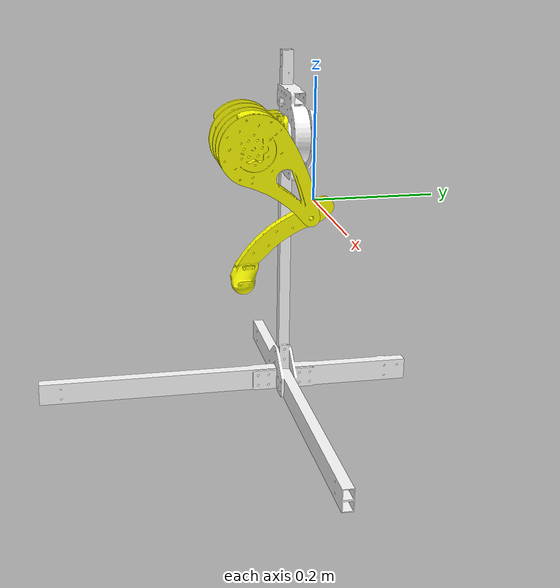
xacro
<?xml version="1.0" encoding="utf-8"?>
<robot
  name="chuanlianma_test3">
  <link
    name="base_link">
    <inertial>
      <origin
        xyz="-0.159363388187043 -0.0197161253894639 -0.179827123744285"
        rpy="0 0 0" />
      <mass
        value="0.805022144867874" />
      <inertia
        ixx="0.00639531802970519"
        ixy="-9.77568411193592E-09"
        ixz="2.5844611713867E-08"
        iyy="0.00665273886148208"
        iyz="1.17456584711926E-08"
        izz="0.00855411586754855" />
    </inertial>
    <visual>
      <origin
        xyz="0 0 0"
        rpy="0 0 0" />
      <geometry>
        <mesh
          filename="package://chuanlianma_test3/meshes/base_link.STL" />
      </geometry>
      <material
        name="">
        <color
          rgba="1 1 1 1" />
      </material>
    </visual>
    <collision>
      <origin
        xyz="0 0 0"
        rpy="0 0 0" />
      <geometry>
        <mesh
          filename="package://chuanlianma_test3/meshes/base_link.STL" />
      </geometry>
    </collision>
  </link>
  <link
    name="link1">
    <inertial>
      <origin
        xyz="0.0010541048683331 0.000175694738037219 0.0654972380283042"
        rpy="0 0 0" />
      <mass
        value="0.313270878552616" />
      <inertia
        ixx="0.000420442071174248"
        ixy="9.77568413485631E-09"
        ixz="-1.17456584873445E-08"
        iyy="0.00022321922429073"
        iyz="2.58446116621399E-08"
        izz="0.000230094065529792" />
    </inertial>
    <visual>
      <origin
        xyz="0 0 0"
        rpy="0 0 0" />
      <geometry>
        <mesh
          filename="package://chuanlianma_test3/meshes/link1.STL" />
      </geometry>
      <material
        name="">
        <color
          rgba="1 1 0 1" />
      </material>
    </visual>
    <collision>
      <origin
        xyz="0 0 0"
        rpy="0 0 0" />
      <geometry>
        <mesh
          filename="package://chuanlianma_test3/meshes/link1.STL" />
      </geometry>
    </collision>
  </link>
  <joint
    name="joint1"
    type="continuous">
    <origin
      xyz="-0.13137 -0.017 0.081797"
      rpy="1.5708 0.015886 0" />
    <parent
      link="base_link" />
    <child
      link="link1" />
    <axis
      xyz="0 0 1" />
    <limit
      lower="-3.14"
      upper="3.14"
      effort="10"
      velocity="0.01" />
    <dynamics
      damping="0.2"
      friction="0.5" />
  </joint>
  <link
    name="link2">
    <inertial>
      <origin
        xyz="-0.00517668263636005 -0.00272837285226221 -0.0419081887813389"
        rpy="0 0 0" />
      <mass
        value="0.474905842722764" />
      <inertia
        ixx="0.000324368848619166"
        ixy="-8.87915477280549E-05"
        ixz="-4.23239864232219E-09"
        iyy="0.000499996579725748"
        iyz="1.2331876339248E-08"
        izz="0.000798349323427996" />
    </inertial>
    <visual>
      <origin
        xyz="0 0 0"
        rpy="0 0 0" />
      <geometry>
        <mesh
          filename="package://chuanlianma_test3/meshes/link2.STL" />
      </geometry>
      <material
        name="">
        <color
          rgba="1 1 0 1" />
      </material>
    </visual>
    <collision>
      <origin
        xyz="0 0 0"
        rpy="0 0 0" />
      <geometry>
        <mesh
          filename="package://chuanlianma_test3/meshes/link2.STL" />
      </geometry>
    </collision>
  </link>
  <joint
    name="joint2"
    type="continuous">
    <origin
      xyz="0.03015 0.00015 0.0752"
      rpy="-1.5708 -1.0761 1.5708" />
    <parent
      link="link1" />
    <child
      link="link2" />
    <axis
      xyz="0 0 1" />
    <limit
      lower="-3.14"
      upper="3.14"
      effort="10"
      velocity="0.01" />
    <dynamics
      damping="0.2"
      friction="0.5" />
  </joint>
  <link
    name="link3">
    <inertial>
      <origin
        xyz="0.0640853900922428 -0.0519701348689848 0.0102825164809162"
        rpy="0 0 0" />
      <mass
        value="0.154778284218652" />
      <inertia
        ixx="7.39290282272028E-05"
        ixy="8.3100214665692E-05"
        ixz="-1.32005087462868E-06"
        iyy="0.000140620551371325"
        iyz="9.74098465383069E-07"
        izz="0.000201926581280346" />
    </inertial>
    <visual>
      <origin
        xyz="0 0 0"
        rpy="0 0 0" />
      <geometry>
        <mesh
          filename="package://chuanlianma_test3/meshes/link3.STL" />
      </geometry>
      <material
        name="">
        <color
          rgba="1 1 0 1" />
      </material>
    </visual>
    <collision>
      <origin
        xyz="0 0 0"
        rpy="0 0 0" />
      <geometry>
        <mesh
          filename="package://chuanlianma_test3/meshes/link3.STL" />
      </geometry>
    </collision>
  </link>
  <joint
    name="joint3"
    type="continuous">
    <origin
      xyz="-0.13858 -0.057403 -0.07725"
      rpy="0.015886 0 -0.49471" />
    <parent
      link="link2" />
    <child
      link="link3" />
    <axis
      xyz="0 0.015885 0.99987" />
    <limit
      lower="-3.14"
      upper="3.14"
      effort="10"
      velocity="0.01" />
    <dynamics
      damping="0.2"
      friction="0.5" />
  </joint>
   <transmission name="t1">
    <type>transmission_interface/SimpleTransmission</type>
    <joint name="joint1">
      <hardwareInterface>hardware_interface/EffortJointInterface</hardwareInterface>
    </joint>
    <actuator name="a1">
      <mechanicalReduction>1.0</mechanicalReduction>
      <hardwareInterface>hardware_interface/EffortJointInterface</hardwareInterface>
    </actuator>
  </transmission>

  <transmission name="t2">
    <type>transmission_interface/SimpleTransmission</type>
    <joint name="joint2">
      <hardwareInterface>hardware_interface/EffortJointInterface</hardwareInterface>
    </joint>
    <actuator name="a2">
      <mechanicalReduction>1.0</mechanicalReduction>
      <hardwareInterface>hardware_interface/EffortJointInterface</hardwareInterface>
    </actuator>
  </transmission>

  <transmission name="t3">
    <type>transmission_interface/SimpleTransmission</type>
    <joint name="joint3">
      <hardwareInterface>hardware_interface/EffortJointInterface</hardwareInterface>
    </joint>
    <actuator name="a3">
      <mechanicalReduction>1.0</mechanicalReduction> <!--传动比-->
      <hardwareInterface>hardware_interface/EffortJointInterface</hardwareInterface>
    </actuator>
  </transmission>

  <gazebo>
    <plugin name="gazebo_ros_control" filename="libgazebo_ros_control.so">
      <robotNamespace>/chuanlian</robotNamespace>
      <robotSimType>gazebo_ros_control/DefaultRobotHWSim</robotSimType>
      <legacyModeNS>true</legacyModeNS>
    </plugin>
  </gazebo>
    <gazebo reference="base_link">
    <kp>1000000000.0</kp>
    <!-- 刚度系数 -->
    <kd>100000000.0</kd>
    <!-- 阻尼系数 -->
    <mu1>100000000.0</mu1>
    <!-- 第一摩擦方向的库伦摩擦系数 -->
    <mu2>100000000.0</mu2>
    <!-- 垂直于第一摩擦方向的第二摩擦方向摩擦系数 -->
    <minDepth>0.001</minDepth>
  </gazebo>

  <gazebo reference="link1">
    <kp>1000000.0</kp>
    <kd>1.0</kd>
    <mu1>0.2</mu1>
    <mu2>0.2</mu2>
    <minDepth>0.001</minDepth>
  </gazebo>

  <gazebo reference="link2">

    <kp>1000000.0</kp>
    <kd>1.0</kd>
    <mu1>0.2</mu1>
    <mu2>0.2</mu2>
    <minDepth>0.001</minDepth>
  </gazebo>

  <gazebo reference="link3">
    <kp>1000000.0</kp>
    <kd>1.0</kd>
    <mu1>0.2</mu1>
    <mu2>0.2</mu2>
    <minDepth>0.001</minDepth>
  </gazebo>

</robot>
